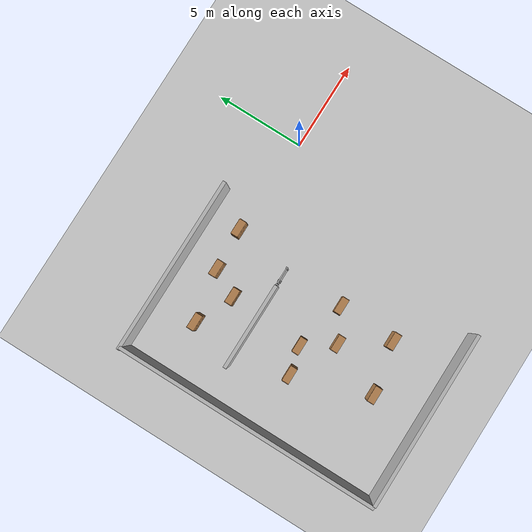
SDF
<sdf version="1.6">
 <world name="default">
  <model name="ground_plane">
   <static>1</static>
   <link name="link">
    <collision name="collision">
     <geometry><plane><normal>0 0 1</normal><size>100 100</size></plane></geometry>
     <surface><friction><ode><mu>100</mu><mu2>50</mu2></ode></friction></surface>
    </collision>
    <visual name="visual">
     <cast_shadows>0</cast_shadows>
     <geometry><plane><normal>0 0 1</normal><size>100 100</size></plane></geometry>
     <material>
      <script><uri>file://media/materials/scripts/gazebo.material</uri><name>Gazebo/Grey</name></script>
     </material>
    </visual>
    <velocity_decay><linear>0</linear><angular>0</angular></velocity_decay>
   </link>
  </model>
  <model name="wall_3_model">
   <pose>-13.8175 -5.49075 1 0 -0 0</pose>
   <static>1</static>
   <link name="wall_3_body">
    <inertial>
     <mass>1</mass>
     <inertia><ixx>1</ixx><ixy>0</ixy><ixz>0</ixz><iyy>1</iyy><iyz>0</iyz><izz>1</izz></inertia>
    </inertial>
    <collision name="collision"><geometry><box><size>0.2 15 2</size></box></geometry></collision>
    <visual name="visual"><geometry><box><size>0.2 15 2</size></box></geometry></visual>
    <velocity_decay><linear>0</linear><angular>0</angular></velocity_decay>
   </link>
  </model>
  <model name="wall_2_model_clone">
   <pose>-8.95614 1.99382 1 0 -0 0</pose>
   <static>1</static>
   <link name="wall_2_body">
    <inertial>
     <mass>1</mass>
     <inertia><ixx>1</ixx><ixy>0</ixy><ixz>0</ixz><iyy>1</iyy><iyz>0</iyz><izz>1</izz></inertia>
    </inertial>
    <collision name="collision"><geometry><box><size>10 0.2 2</size></box></geometry></collision>
    <visual name="visual"><geometry><box><size>10 0.2 2</size></box></geometry></visual>
    <velocity_decay><linear>0</linear><angular>0</angular></velocity_decay>
   </link>
  </model>
  <model name="wall_2_model_clone_0">
   <pose>-8.74815 -12.9526 1 0 -0 0</pose>
   <static>1</static>
   <link name="wall_2_body">
    <inertial>
     <mass>1</mass>
     <inertia><ixx>1</ixx><ixy>0</ixy><ixz>0</ixz><iyy>1</iyy><iyz>0</iyz><izz>1</izz></inertia>
    </inertial>
    <collision name="collision"><geometry><box><size>10 0.2 2</size></box></geometry></collision>
    <visual name="visual"><geometry><box><size>10 0.2 2</size></box></geometry></visual>
    <velocity_decay><linear>0</linear><angular>0</angular></velocity_decay>
   </link>
  </model>
  <model name="wall_6_model_clone">
   <pose>-9.46438 -3.01774 1 0 -0 0</pose>
   <static>1</static>
   <link name="wall_6_body">
    <inertial>
     <mass>1</mass>
     <inertia><ixx>1</ixx><ixy>0</ixy><ixz>0</ixz><iyy>1</iyy><iyz>0</iyz><izz>1</izz></inertia>
    </inertial>
    <collision name="collision"><geometry><box><size>4.86137 0.2 2</size></box></geometry></collision>
    <visual name="visual"><geometry><box><size>4.86137 0.2 2</size></box></geometry></visual>
    <velocity_decay><linear>0</linear><angular>0</angular></velocity_decay>
   </link>
  </model>
  <model name="bookshelf_0_clone">
   <static>0</static>
   <link name="link">
    <inertial>
     <mass>1</mass>
     <inertia><ixx>1</ixx><ixy>0</ixy><ixz>0</ixz><iyy>1</iyy><iyz>0</iyz><izz>1</izz></inertia>
    </inertial>
    <collision name="back">
     <pose>0 0.005 0.6 0 -0 0</pose>
     <geometry><box><size>0.9 0.01 1.2</size></box></geometry>
    </collision>
    <visual name="visual1">
     <pose>0 0.005 0.6 0 -0 0</pose>
     <geometry><box><size>0.9 0.01 1.2</size></box></geometry>
     <material>
      <script><uri>file://media/materials/scripts/gazebo.material</uri><name>Gazebo/Wood</name></script>
     </material>
    </visual>
    <collision name="left_side">
     <pose>0.45 -0.195 0.6 0 -0 0</pose>
     <geometry><box><size>0.02 0.4 1.2</size></box></geometry>
    </collision>
    <visual name="visual2">
     <pose>0.45 -0.195 0.6 0 -0 0</pose>
     <geometry><box><size>0.02 0.4 1.2</size></box></geometry>
     <material>
      <script><uri>file://media/materials/scripts/gazebo.material</uri><name>Gazebo/Wood</name></script>
     </material>
    </visual>
    <collision name="right_side">
     <pose>-0.45 -0.195 0.6 0 -0 0</pose>
     <geometry><box><size>0.02 0.4 1.2</size></box></geometry>
    </collision>
    <visual name="visual3">
     <pose>-0.45 -0.195 0.6 0 -0 0</pose>
     <geometry><box><size>0.02 0.4 1.2</size></box></geometry>
     <material>
      <script><uri>file://media/materials/scripts/gazebo.material</uri><name>Gazebo/Wood</name></script>
     </material>
    </visual>
    <collision name="bottom">
     <pose>0 -0.195 0.03 0 -0 0</pose>
     <geometry><box><size>0.88 0.4 0.06</size></box></geometry>
    </collision>
    <visual name="visual4">
     <pose>0 -0.195 0.03 0 -0 0</pose>
     <geometry><box><size>0.88 0.4 0.06</size></box></geometry>
     <material>
      <script><uri>file://media/materials/scripts/gazebo.material</uri><name>Gazebo/Wood</name></script>
     </material>
    </visual>
    <collision name="top">
     <pose>0 -0.195 1.19 0 -0 0</pose>
     <geometry><box><size>0.88 0.4 0.02</size></box></geometry>
    </collision>
    <visual name="visual5">
     <pose>0 -0.195 1.19 0 -0 0</pose>
     <geometry><box><size>0.88 0.4 0.02</size></box></geometry>
     <material>
      <script><uri>file://media/materials/scripts/gazebo.material</uri><name>Gazebo/Wood</name></script>
     </material>
    </visual>
    <collision name="low_shelf">
     <pose>0 -0.195 0.43 0 -0 0</pose>
     <geometry><box><size>0.88 0.4 0.02</size></box></geometry>
    </collision>
    <visual name="visual6">
     <pose>0 -0.195 0.43 0 -0 0</pose>
     <geometry><box><size>0.88 0.4 0.02</size></box></geometry>
     <material>
      <script><uri>file://media/materials/scripts/gazebo.material</uri><name>Gazebo/Wood</name></script>
     </material>
    </visual>
    <collision name="high_shelf">
     <pose>0 -0.195 0.8 0 -0 0</pose>
     <geometry><box><size>0.88 0.4 0.02</size></box></geometry>
    </collision>
    <visual name="visual7">
     <pose>0 -0.195 0.8 0 -0 0</pose>
     <geometry><box><size>0.88 0.4 0.02</size></box></geometry>
     <material>
      <script><uri>file://media/materials/scripts/gazebo.material</uri><name>Gazebo/Wood</name></script>
     </material>
    </visual>
    <velocity_decay><linear>0</linear><angular>0</angular></velocity_decay>
   </link>
   <pose>-8.68338 -1.16265 1e-06 -6.3e-05 -0 0</pose>
  </model>
  <model name="bookshelf_0_clone_0">
   <static>0</static>
   <link name="link">
    <inertial>
     <mass>1</mass>
     <inertia><ixx>1</ixx><ixy>0</ixy><ixz>0</ixz><iyy>1</iyy><iyz>0</iyz><izz>1</izz></inertia>
    </inertial>
    <collision name="back">
     <pose>0 0.005 0.6 0 -0 0</pose>
     <geometry><box><size>0.9 0.01 1.2</size></box></geometry>
    </collision>
    <visual name="visual1">
     <pose>0 0.005 0.6 0 -0 0</pose>
     <geometry><box><size>0.9 0.01 1.2</size></box></geometry>
     <material>
      <script><uri>file://media/materials/scripts/gazebo.material</uri><name>Gazebo/Wood</name></script>
     </material>
    </visual>
    <collision name="left_side">
     <pose>0.45 -0.195 0.6 0 -0 0</pose>
     <geometry><box><size>0.02 0.4 1.2</size></box></geometry>
    </collision>
    <visual name="visual2">
     <pose>0.45 -0.195 0.6 0 -0 0</pose>
     <geometry><box><size>0.02 0.4 1.2</size></box></geometry>
     <material>
      <script><uri>file://media/materials/scripts/gazebo.material</uri><name>Gazebo/Wood</name></script>
     </material>
    </visual>
    <collision name="right_side">
     <pose>-0.45 -0.195 0.6 0 -0 0</pose>
     <geometry><box><size>0.02 0.4 1.2</size></box></geometry>
    </collision>
    <visual name="visual3">
     <pose>-0.45 -0.195 0.6 0 -0 0</pose>
     <geometry><box><size>0.02 0.4 1.2</size></box></geometry>
     <material>
      <script><uri>file://media/materials/scripts/gazebo.material</uri><name>Gazebo/Wood</name></script>
     </material>
    </visual>
    <collision name="bottom">
     <pose>0 -0.195 0.03 0 -0 0</pose>
     <geometry><box><size>0.88 0.4 0.06</size></box></geometry>
    </collision>
    <visual name="visual4">
     <pose>0 -0.195 0.03 0 -0 0</pose>
     <geometry><box><size>0.88 0.4 0.06</size></box></geometry>
     <material>
      <script><uri>file://media/materials/scripts/gazebo.material</uri><name>Gazebo/Wood</name></script>
     </material>
    </visual>
    <collision name="top">
     <pose>0 -0.195 1.19 0 -0 0</pose>
     <geometry><box><size>0.88 0.4 0.02</size></box></geometry>
    </collision>
    <visual name="visual5">
     <pose>0 -0.195 1.19 0 -0 0</pose>
     <geometry><box><size>0.88 0.4 0.02</size></box></geometry>
     <material>
      <script><uri>file://media/materials/scripts/gazebo.material</uri><name>Gazebo/Wood</name></script>
     </material>
    </visual>
    <collision name="low_shelf">
     <pose>0 -0.195 0.43 0 -0 0</pose>
     <geometry><box><size>0.88 0.4 0.02</size></box></geometry>
    </collision>
    <visual name="visual6">
     <pose>0 -0.195 0.43 0 -0 0</pose>
     <geometry><box><size>0.88 0.4 0.02</size></box></geometry>
     <material>
      <script><uri>file://media/materials/scripts/gazebo.material</uri><name>Gazebo/Wood</name></script>
     </material>
    </visual>
    <collision name="high_shelf">
     <pose>0 -0.195 0.8 0 -0 0</pose>
     <geometry><box><size>0.88 0.4 0.02</size></box></geometry>
    </collision>
    <visual name="visual7">
     <pose>0 -0.195 0.8 0 -0 0</pose>
     <geometry><box><size>0.88 0.4 0.02</size></box></geometry>
     <material>
      <script><uri>file://media/materials/scripts/gazebo.material</uri><name>Gazebo/Wood</name></script>
     </material>
    </visual>
    <velocity_decay><linear>0</linear><angular>0</angular></velocity_decay>
   </link>
   <pose>-7.90183 0.3103 1e-06 -6.3e-05 -0 0</pose>
  </model>
  <model name="bookshelf_0_clone_1">
   <static>0</static>
   <link name="link">
    <inertial>
     <mass>1</mass>
     <inertia><ixx>1</ixx><ixy>0</ixy><ixz>0</ixz><iyy>1</iyy><iyz>0</iyz><izz>1</izz></inertia>
    </inertial>
    <collision name="back">
     <pose>0 0.005 0.6 0 -0 0</pose>
     <geometry><box><size>0.9 0.01 1.2</size></box></geometry>
    </collision>
    <visual name="visual1">
     <pose>0 0.005 0.6 0 -0 0</pose>
     <geometry><box><size>0.9 0.01 1.2</size></box></geometry>
     <material>
      <script><uri>file://media/materials/scripts/gazebo.material</uri><name>Gazebo/Wood</name></script>
     </material>
    </visual>
    <collision name="left_side">
     <pose>0.45 -0.195 0.6 0 -0 0</pose>
     <geometry><box><size>0.02 0.4 1.2</size></box></geometry>
    </collision>
    <visual name="visual2">
     <pose>0.45 -0.195 0.6 0 -0 0</pose>
     <geometry><box><size>0.02 0.4 1.2</size></box></geometry>
     <material>
      <script><uri>file://media/materials/scripts/gazebo.material</uri><name>Gazebo/Wood</name></script>
     </material>
    </visual>
    <collision name="right_side">
     <pose>-0.45 -0.195 0.6 0 -0 0</pose>
     <geometry><box><size>0.02 0.4 1.2</size></box></geometry>
    </collision>
    <visual name="visual3">
     <pose>-0.45 -0.195 0.6 0 -0 0</pose>
     <geometry><box><size>0.02 0.4 1.2</size></box></geometry>
     <material>
      <script><uri>file://media/materials/scripts/gazebo.material</uri><name>Gazebo/Wood</name></script>
     </material>
    </visual>
    <collision name="bottom">
     <pose>0 -0.195 0.03 0 -0 0</pose>
     <geometry><box><size>0.88 0.4 0.06</size></box></geometry>
    </collision>
    <visual name="visual4">
     <pose>0 -0.195 0.03 0 -0 0</pose>
     <geometry><box><size>0.88 0.4 0.06</size></box></geometry>
     <material>
      <script><uri>file://media/materials/scripts/gazebo.material</uri><name>Gazebo/Wood</name></script>
     </material>
    </visual>
    <collision name="top">
     <pose>0 -0.195 1.19 0 -0 0</pose>
     <geometry><box><size>0.88 0.4 0.02</size></box></geometry>
    </collision>
    <visual name="visual5">
     <pose>0 -0.195 1.19 0 -0 0</pose>
     <geometry><box><size>0.88 0.4 0.02</size></box></geometry>
     <material>
      <script><uri>file://media/materials/scripts/gazebo.material</uri><name>Gazebo/Wood</name></script>
     </material>
    </visual>
    <collision name="low_shelf">
     <pose>0 -0.195 0.43 0 -0 0</pose>
     <geometry><box><size>0.88 0.4 0.02</size></box></geometry>
    </collision>
    <visual name="visual6">
     <pose>0 -0.195 0.43 0 -0 0</pose>
     <geometry><box><size>0.88 0.4 0.02</size></box></geometry>
     <material>
      <script><uri>file://media/materials/scripts/gazebo.material</uri><name>Gazebo/Wood</name></script>
     </material>
    </visual>
    <collision name="high_shelf">
     <pose>0 -0.195 0.8 0 -0 0</pose>
     <geometry><box><size>0.88 0.4 0.02</size></box></geometry>
    </collision>
    <visual name="visual7">
     <pose>0 -0.195 0.8 0 -0 0</pose>
     <geometry><box><size>0.88 0.4 0.02</size></box></geometry>
     <material>
      <script><uri>file://media/materials/scripts/gazebo.material</uri><name>Gazebo/Wood</name></script>
     </material>
    </visual>
    <velocity_decay><linear>0</linear><angular>0</angular></velocity_decay>
   </link>
   <pose>-7.86995 -7.06577 1e-06 -6.3e-05 -0 0</pose>
  </model>
  <model name="bookshelf_0_clone_2">
   <static>0</static>
   <link name="link">
    <inertial>
     <mass>1</mass>
     <inertia><ixx>1</ixx><ixy>0</ixy><ixz>0</ixz><iyy>1</iyy><iyz>0</iyz><izz>1</izz></inertia>
    </inertial>
    <collision name="back">
     <pose>0 0.005 0.6 0 -0 0</pose>
     <geometry><box><size>0.9 0.01 1.2</size></box></geometry>
    </collision>
    <visual name="visual1">
     <pose>0 0.005 0.6 0 -0 0</pose>
     <geometry><box><size>0.9 0.01 1.2</size></box></geometry>
     <material>
      <script><uri>file://media/materials/scripts/gazebo.material</uri><name>Gazebo/Wood</name></script>
     </material>
    </visual>
    <collision name="left_side">
     <pose>0.45 -0.195 0.6 0 -0 0</pose>
     <geometry><box><size>0.02 0.4 1.2</size></box></geometry>
    </collision>
    <visual name="visual2">
     <pose>0.45 -0.195 0.6 0 -0 0</pose>
     <geometry><box><size>0.02 0.4 1.2</size></box></geometry>
     <material>
      <script><uri>file://media/materials/scripts/gazebo.material</uri><name>Gazebo/Wood</name></script>
     </material>
    </visual>
    <collision name="right_side">
     <pose>-0.45 -0.195 0.6 0 -0 0</pose>
     <geometry><box><size>0.02 0.4 1.2</size></box></geometry>
    </collision>
    <visual name="visual3">
     <pose>-0.45 -0.195 0.6 0 -0 0</pose>
     <geometry><box><size>0.02 0.4 1.2</size></box></geometry>
     <material>
      <script><uri>file://media/materials/scripts/gazebo.material</uri><name>Gazebo/Wood</name></script>
     </material>
    </visual>
    <collision name="bottom">
     <pose>0 -0.195 0.03 0 -0 0</pose>
     <geometry><box><size>0.88 0.4 0.06</size></box></geometry>
    </collision>
    <visual name="visual4">
     <pose>0 -0.195 0.03 0 -0 0</pose>
     <geometry><box><size>0.88 0.4 0.06</size></box></geometry>
     <material>
      <script><uri>file://media/materials/scripts/gazebo.material</uri><name>Gazebo/Wood</name></script>
     </material>
    </visual>
    <collision name="top">
     <pose>0 -0.195 1.19 0 -0 0</pose>
     <geometry><box><size>0.88 0.4 0.02</size></box></geometry>
    </collision>
    <visual name="visual5">
     <pose>0 -0.195 1.19 0 -0 0</pose>
     <geometry><box><size>0.88 0.4 0.02</size></box></geometry>
     <material>
      <script><uri>file://media/materials/scripts/gazebo.material</uri><name>Gazebo/Wood</name></script>
     </material>
    </visual>
    <collision name="low_shelf">
     <pose>0 -0.195 0.43 0 -0 0</pose>
     <geometry><box><size>0.88 0.4 0.02</size></box></geometry>
    </collision>
    <visual name="visual6">
     <pose>0 -0.195 0.43 0 -0 0</pose>
     <geometry><box><size>0.88 0.4 0.02</size></box></geometry>
     <material>
      <script><uri>file://media/materials/scripts/gazebo.material</uri><name>Gazebo/Wood</name></script>
     </material>
    </visual>
    <collision name="high_shelf">
     <pose>0 -0.195 0.8 0 -0 0</pose>
     <geometry><box><size>0.88 0.4 0.02</size></box></geometry>
    </collision>
    <visual name="visual7">
     <pose>0 -0.195 0.8 0 -0 0</pose>
     <geometry><box><size>0.88 0.4 0.02</size></box></geometry>
     <material>
      <script><uri>file://media/materials/scripts/gazebo.material</uri><name>Gazebo/Wood</name></script>
     </material>
    </visual>
    <velocity_decay><linear>0</linear><angular>0</angular></velocity_decay>
   </link>
   <pose>-6.24179 -9.41728 1e-06 -6.3e-05 -0 0</pose>
  </model>
  <model name="bookshelf_0_clone_3">
   <static>0</static>
   <link name="link">
    <inertial>
     <mass>1</mass>
     <inertia><ixx>1</ixx><ixy>0</ixy><ixz>0</ixz><iyy>1</iyy><iyz>0</iyz><izz>1</izz></inertia>
    </inertial>
    <collision name="back">
     <pose>0 0.005 0.6 0 -0 0</pose>
     <geometry><box><size>0.9 0.01 1.2</size></box></geometry>
    </collision>
    <visual name="visual1">
     <pose>0 0.005 0.6 0 -0 0</pose>
     <geometry><box><size>0.9 0.01 1.2</size></box></geometry>
     <material>
      <script><uri>file://media/materials/scripts/gazebo.material</uri><name>Gazebo/Wood</name></script>
     </material>
    </visual>
    <collision name="left_side">
     <pose>0.45 -0.195 0.6 0 -0 0</pose>
     <geometry><box><size>0.02 0.4 1.2</size></box></geometry>
    </collision>
    <visual name="visual2">
     <pose>0.45 -0.195 0.6 0 -0 0</pose>
     <geometry><box><size>0.02 0.4 1.2</size></box></geometry>
     <material>
      <script><uri>file://media/materials/scripts/gazebo.material</uri><name>Gazebo/Wood</name></script>
     </material>
    </visual>
    <collision name="right_side">
     <pose>-0.45 -0.195 0.6 0 -0 0</pose>
     <geometry><box><size>0.02 0.4 1.2</size></box></geometry>
    </collision>
    <visual name="visual3">
     <pose>-0.45 -0.195 0.6 0 -0 0</pose>
     <geometry><box><size>0.02 0.4 1.2</size></box></geometry>
     <material>
      <script><uri>file://media/materials/scripts/gazebo.material</uri><name>Gazebo/Wood</name></script>
     </material>
    </visual>
    <collision name="bottom">
     <pose>0 -0.195 0.03 0 -0 0</pose>
     <geometry><box><size>0.88 0.4 0.06</size></box></geometry>
    </collision>
    <visual name="visual4">
     <pose>0 -0.195 0.03 0 -0 0</pose>
     <geometry><box><size>0.88 0.4 0.06</size></box></geometry>
     <material>
      <script><uri>file://media/materials/scripts/gazebo.material</uri><name>Gazebo/Wood</name></script>
     </material>
    </visual>
    <collision name="top">
     <pose>0 -0.195 1.19 0 -0 0</pose>
     <geometry><box><size>0.88 0.4 0.02</size></box></geometry>
    </collision>
    <visual name="visual5">
     <pose>0 -0.195 1.19 0 -0 0</pose>
     <geometry><box><size>0.88 0.4 0.02</size></box></geometry>
     <material>
      <script><uri>file://media/materials/scripts/gazebo.material</uri><name>Gazebo/Wood</name></script>
     </material>
    </visual>
    <collision name="low_shelf">
     <pose>0 -0.195 0.43 0 -0 0</pose>
     <geometry><box><size>0.88 0.4 0.02</size></box></geometry>
    </collision>
    <visual name="visual6">
     <pose>0 -0.195 0.43 0 -0 0</pose>
     <geometry><box><size>0.88 0.4 0.02</size></box></geometry>
     <material>
      <script><uri>file://media/materials/scripts/gazebo.material</uri><name>Gazebo/Wood</name></script>
     </material>
    </visual>
    <collision name="high_shelf">
     <pose>0 -0.195 0.8 0 -0 0</pose>
     <geometry><box><size>0.88 0.4 0.02</size></box></geometry>
    </collision>
    <visual name="visual7">
     <pose>0 -0.195 0.8 0 -0 0</pose>
     <geometry><box><size>0.88 0.4 0.02</size></box></geometry>
     <material>
      <script><uri>file://media/materials/scripts/gazebo.material</uri><name>Gazebo/Wood</name></script>
     </material>
    </visual>
    <velocity_decay><linear>0</linear><angular>0</angular></velocity_decay>
   </link>
   <pose>-9.08829 -10.0179 1e-06 -6.3e-05 -0 0</pose>
  </model>
  <model name="bookshelf_0_clone_4">
   <static>0</static>
   <link name="link">
    <inertial>
     <mass>1</mass>
     <inertia><ixx>1</ixx><ixy>0</ixy><ixz>0</ixz><iyy>1</iyy><iyz>0</iyz><izz>1</izz></inertia>
    </inertial>
    <collision name="back">
     <pose>0 0.005 0.6 0 -0 0</pose>
     <geometry><box><size>0.9 0.01 1.2</size></box></geometry>
    </collision>
    <visual name="visual1">
     <pose>0 0.005 0.6 0 -0 0</pose>
     <geometry><box><size>0.9 0.01 1.2</size></box></geometry>
     <material>
      <script><uri>file://media/materials/scripts/gazebo.material</uri><name>Gazebo/Wood</name></script>
     </material>
    </visual>
    <collision name="left_side">
     <pose>0.45 -0.195 0.6 0 -0 0</pose>
     <geometry><box><size>0.02 0.4 1.2</size></box></geometry>
    </collision>
    <visual name="visual2">
     <pose>0.45 -0.195 0.6 0 -0 0</pose>
     <geometry><box><size>0.02 0.4 1.2</size></box></geometry>
     <material>
      <script><uri>file://media/materials/scripts/gazebo.material</uri><name>Gazebo/Wood</name></script>
     </material>
    </visual>
    <collision name="right_side">
     <pose>-0.45 -0.195 0.6 0 -0 0</pose>
     <geometry><box><size>0.02 0.4 1.2</size></box></geometry>
    </collision>
    <visual name="visual3">
     <pose>-0.45 -0.195 0.6 0 -0 0</pose>
     <geometry><box><size>0.02 0.4 1.2</size></box></geometry>
     <material>
      <script><uri>file://media/materials/scripts/gazebo.material</uri><name>Gazebo/Wood</name></script>
     </material>
    </visual>
    <collision name="bottom">
     <pose>0 -0.195 0.03 0 -0 0</pose>
     <geometry><box><size>0.88 0.4 0.06</size></box></geometry>
    </collision>
    <visual name="visual4">
     <pose>0 -0.195 0.03 0 -0 0</pose>
     <geometry><box><size>0.88 0.4 0.06</size></box></geometry>
     <material>
      <script><uri>file://media/materials/scripts/gazebo.material</uri><name>Gazebo/Wood</name></script>
     </material>
    </visual>
    <collision name="top">
     <pose>0 -0.195 1.19 0 -0 0</pose>
     <geometry><box><size>0.88 0.4 0.02</size></box></geometry>
    </collision>
    <visual name="visual5">
     <pose>0 -0.195 1.19 0 -0 0</pose>
     <geometry><box><size>0.88 0.4 0.02</size></box></geometry>
     <material>
      <script><uri>file://media/materials/scripts/gazebo.material</uri><name>Gazebo/Wood</name></script>
     </material>
    </visual>
    <collision name="low_shelf">
     <pose>0 -0.195 0.43 0 -0 0</pose>
     <geometry><box><size>0.88 0.4 0.02</size></box></geometry>
    </collision>
    <visual name="visual6">
     <pose>0 -0.195 0.43 0 -0 0</pose>
     <geometry><box><size>0.88 0.4 0.02</size></box></geometry>
     <material>
      <script><uri>file://media/materials/scripts/gazebo.material</uri><name>Gazebo/Wood</name></script>
     </material>
    </visual>
    <collision name="high_shelf">
     <pose>0 -0.195 0.8 0 -0 0</pose>
     <geometry><box><size>0.88 0.4 0.02</size></box></geometry>
    </collision>
    <visual name="visual7">
     <pose>0 -0.195 0.8 0 -0 0</pose>
     <geometry><box><size>0.88 0.4 0.02</size></box></geometry>
     <material>
      <script><uri>file://media/materials/scripts/gazebo.material</uri><name>Gazebo/Wood</name></script>
     </material>
    </visual>
    <velocity_decay><linear>0</linear><angular>0</angular></velocity_decay>
   </link>
   <pose>-9.00217 -5.4424 1e-06 -6.3e-05 -0 0</pose>
  </model>
  <model name="bookshelf_0_clone_5">
   <static>0</static>
   <link name="link">
    <inertial>
     <mass>1</mass>
     <inertia><ixx>1</ixx><ixy>0</ixy><ixz>0</ixz><iyy>1</iyy><iyz>0</iyz><izz>1</izz></inertia>
    </inertial>
    <collision name="back">
     <pose>0 0.005 0.6 0 -0 0</pose>
     <geometry><box><size>0.9 0.01 1.2</size></box></geometry>
    </collision>
    <visual name="visual1">
     <pose>0 0.005 0.6 0 -0 0</pose>
     <geometry><box><size>0.9 0.01 1.2</size></box></geometry>
     <material>
      <script><uri>file://media/materials/scripts/gazebo.material</uri><name>Gazebo/Wood</name></script>
     </material>
    </visual>
    <collision name="left_side">
     <pose>0.45 -0.195 0.6 0 -0 0</pose>
     <geometry><box><size>0.02 0.4 1.2</size></box></geometry>
    </collision>
    <visual name="visual2">
     <pose>0.45 -0.195 0.6 0 -0 0</pose>
     <geometry><box><size>0.02 0.4 1.2</size></box></geometry>
     <material>
      <script><uri>file://media/materials/scripts/gazebo.material</uri><name>Gazebo/Wood</name></script>
     </material>
    </visual>
    <collision name="right_side">
     <pose>-0.45 -0.195 0.6 0 -0 0</pose>
     <geometry><box><size>0.02 0.4 1.2</size></box></geometry>
    </collision>
    <visual name="visual3">
     <pose>-0.45 -0.195 0.6 0 -0 0</pose>
     <geometry><box><size>0.02 0.4 1.2</size></box></geometry>
     <material>
      <script><uri>file://media/materials/scripts/gazebo.material</uri><name>Gazebo/Wood</name></script>
     </material>
    </visual>
    <collision name="bottom">
     <pose>0 -0.195 0.03 0 -0 0</pose>
     <geometry><box><size>0.88 0.4 0.06</size></box></geometry>
    </collision>
    <visual name="visual4">
     <pose>0 -0.195 0.03 0 -0 0</pose>
     <geometry><box><size>0.88 0.4 0.06</size></box></geometry>
     <material>
      <script><uri>file://media/materials/scripts/gazebo.material</uri><name>Gazebo/Wood</name></script>
     </material>
    </visual>
    <collision name="top">
     <pose>0 -0.195 1.19 0 -0 0</pose>
     <geometry><box><size>0.88 0.4 0.02</size></box></geometry>
    </collision>
    <visual name="visual5">
     <pose>0 -0.195 1.19 0 -0 0</pose>
     <geometry><box><size>0.88 0.4 0.02</size></box></geometry>
     <material>
      <script><uri>file://media/materials/scripts/gazebo.material</uri><name>Gazebo/Wood</name></script>
     </material>
    </visual>
    <collision name="low_shelf">
     <pose>0 -0.195 0.43 0 -0 0</pose>
     <geometry><box><size>0.88 0.4 0.02</size></box></geometry>
    </collision>
    <visual name="visual6">
     <pose>0 -0.195 0.43 0 -0 0</pose>
     <geometry><box><size>0.88 0.4 0.02</size></box></geometry>
     <material>
      <script><uri>file://media/materials/scripts/gazebo.material</uri><name>Gazebo/Wood</name></script>
     </material>
    </visual>
    <collision name="high_shelf">
     <pose>0 -0.195 0.8 0 -0 0</pose>
     <geometry><box><size>0.88 0.4 0.02</size></box></geometry>
    </collision>
    <visual name="visual7">
     <pose>0 -0.195 0.8 0 -0 0</pose>
     <geometry><box><size>0.88 0.4 0.02</size></box></geometry>
     <material>
      <script><uri>file://media/materials/scripts/gazebo.material</uri><name>Gazebo/Wood</name></script>
     </material>
    </visual>
    <velocity_decay><linear>0</linear><angular>0</angular></velocity_decay>
   </link>
   <pose>-6.12679 -6.18232 1e-06 -6.3e-05 -0 0</pose>
  </model>
  <model name="bookshelf_0_clone_6">
   <static>0</static>
   <link name="link">
    <inertial>
     <mass>1</mass>
     <inertia><ixx>1</ixx><ixy>0</ixy><ixz>0</ixz><iyy>1</iyy><iyz>0</iyz><izz>1</izz></inertia>
    </inertial>
    <collision name="back">
     <pose>0 0.005 0.6 0 -0 0</pose>
     <geometry><box><size>0.9 0.01 1.2</size></box></geometry>
    </collision>
    <visual name="visual1">
     <pose>0 0.005 0.6 0 -0 0</pose>
     <geometry><box><size>0.9 0.01 1.2</size></box></geometry>
     <material>
      <script><uri>file://media/materials/scripts/gazebo.material</uri><name>Gazebo/Wood</name></script>
     </material>
    </visual>
    <collision name="left_side">
     <pose>0.45 -0.195 0.6 0 -0 0</pose>
     <geometry><box><size>0.02 0.4 1.2</size></box></geometry>
    </collision>
    <visual name="visual2">
     <pose>0.45 -0.195 0.6 0 -0 0</pose>
     <geometry><box><size>0.02 0.4 1.2</size></box></geometry>
     <material>
      <script><uri>file://media/materials/scripts/gazebo.material</uri><name>Gazebo/Wood</name></script>
     </material>
    </visual>
    <collision name="right_side">
     <pose>-0.45 -0.195 0.6 0 -0 0</pose>
     <geometry><box><size>0.02 0.4 1.2</size></box></geometry>
    </collision>
    <visual name="visual3">
     <pose>-0.45 -0.195 0.6 0 -0 0</pose>
     <geometry><box><size>0.02 0.4 1.2</size></box></geometry>
     <material>
      <script><uri>file://media/materials/scripts/gazebo.material</uri><name>Gazebo/Wood</name></script>
     </material>
    </visual>
    <collision name="bottom">
     <pose>0 -0.195 0.03 0 -0 0</pose>
     <geometry><box><size>0.88 0.4 0.06</size></box></geometry>
    </collision>
    <visual name="visual4">
     <pose>0 -0.195 0.03 0 -0 0</pose>
     <geometry><box><size>0.88 0.4 0.06</size></box></geometry>
     <material>
      <script><uri>file://media/materials/scripts/gazebo.material</uri><name>Gazebo/Wood</name></script>
     </material>
    </visual>
    <collision name="top">
     <pose>0 -0.195 1.19 0 -0 0</pose>
     <geometry><box><size>0.88 0.4 0.02</size></box></geometry>
    </collision>
    <visual name="visual5">
     <pose>0 -0.195 1.19 0 -0 0</pose>
     <geometry><box><size>0.88 0.4 0.02</size></box></geometry>
     <material>
      <script><uri>file://media/materials/scripts/gazebo.material</uri><name>Gazebo/Wood</name></script>
     </material>
    </visual>
    <collision name="low_shelf">
     <pose>0 -0.195 0.43 0 -0 0</pose>
     <geometry><box><size>0.88 0.4 0.02</size></box></geometry>
    </collision>
    <visual name="visual6">
     <pose>0 -0.195 0.43 0 -0 0</pose>
     <geometry><box><size>0.88 0.4 0.02</size></box></geometry>
     <material>
      <script><uri>file://media/materials/scripts/gazebo.material</uri><name>Gazebo/Wood</name></script>
     </material>
    </visual>
    <collision name="high_shelf">
     <pose>0 -0.195 0.8 0 -0 0</pose>
     <geometry><box><size>0.88 0.4 0.02</size></box></geometry>
    </collision>
    <visual name="visual7">
     <pose>0 -0.195 0.8 0 -0 0</pose>
     <geometry><box><size>0.88 0.4 0.02</size></box></geometry>
     <material>
      <script><uri>file://media/materials/scripts/gazebo.material</uri><name>Gazebo/Wood</name></script>
     </material>
    </visual>
    <velocity_decay><linear>0</linear><angular>0</angular></velocity_decay>
   </link>
   <pose>-5.53315 0.444977 1e-06 -6.3e-05 -0 0</pose>
  </model>
  <model name="bookshelf_0_clone_7">
   <static>0</static>
   <link name="link">
    <inertial>
     <mass>1</mass>
     <inertia><ixx>1</ixx><ixy>0</ixy><ixz>0</ixz><iyy>1</iyy><iyz>0</iyz><izz>1</izz></inertia>
    </inertial>
    <collision name="back">
     <pose>0 0.005 0.6 0 -0 0</pose>
     <geometry><box><size>0.9 0.01 1.2</size></box></geometry>
    </collision>
    <visual name="visual1">
     <pose>0 0.005 0.6 0 -0 0</pose>
     <geometry><box><size>0.9 0.01 1.2</size></box></geometry>
     <material>
      <script><uri>file://media/materials/scripts/gazebo.material</uri><name>Gazebo/Wood</name></script>
     </material>
    </visual>
    <collision name="left_side">
     <pose>0.45 -0.195 0.6 0 -0 0</pose>
     <geometry><box><size>0.02 0.4 1.2</size></box></geometry>
    </collision>
    <visual name="visual2">
     <pose>0.45 -0.195 0.6 0 -0 0</pose>
     <geometry><box><size>0.02 0.4 1.2</size></box></geometry>
     <material>
      <script><uri>file://media/materials/scripts/gazebo.material</uri><name>Gazebo/Wood</name></script>
     </material>
    </visual>
    <collision name="right_side">
     <pose>-0.45 -0.195 0.6 0 -0 0</pose>
     <geometry><box><size>0.02 0.4 1.2</size></box></geometry>
    </collision>
    <visual name="visual3">
     <pose>-0.45 -0.195 0.6 0 -0 0</pose>
     <geometry><box><size>0.02 0.4 1.2</size></box></geometry>
     <material>
      <script><uri>file://media/materials/scripts/gazebo.material</uri><name>Gazebo/Wood</name></script>
     </material>
    </visual>
    <collision name="bottom">
     <pose>0 -0.195 0.03 0 -0 0</pose>
     <geometry><box><size>0.88 0.4 0.06</size></box></geometry>
    </collision>
    <visual name="visual4">
     <pose>0 -0.195 0.03 0 -0 0</pose>
     <geometry><box><size>0.88 0.4 0.06</size></box></geometry>
     <material>
      <script><uri>file://media/materials/scripts/gazebo.material</uri><name>Gazebo/Wood</name></script>
     </material>
    </visual>
    <collision name="top">
     <pose>0 -0.195 1.19 0 -0 0</pose>
     <geometry><box><size>0.88 0.4 0.02</size></box></geometry>
    </collision>
    <visual name="visual5">
     <pose>0 -0.195 1.19 0 -0 0</pose>
     <geometry><box><size>0.88 0.4 0.02</size></box></geometry>
     <material>
      <script><uri>file://media/materials/scripts/gazebo.material</uri><name>Gazebo/Wood</name></script>
     </material>
    </visual>
    <collision name="low_shelf">
     <pose>0 -0.195 0.43 0 -0 0</pose>
     <geometry><box><size>0.88 0.4 0.02</size></box></geometry>
    </collision>
    <visual name="visual6">
     <pose>0 -0.195 0.43 0 -0 0</pose>
     <geometry><box><size>0.88 0.4 0.02</size></box></geometry>
     <material>
      <script><uri>file://media/materials/scripts/gazebo.material</uri><name>Gazebo/Wood</name></script>
     </material>
    </visual>
    <collision name="high_shelf">
     <pose>0 -0.195 0.8 0 -0 0</pose>
     <geometry><box><size>0.88 0.4 0.02</size></box></geometry>
    </collision>
    <visual name="visual7">
     <pose>0 -0.195 0.8 0 -0 0</pose>
     <geometry><box><size>0.88 0.4 0.02</size></box></geometry>
     <material>
      <script><uri>file://media/materials/scripts/gazebo.material</uri><name>Gazebo/Wood</name></script>
     </material>
    </visual>
    <velocity_decay><linear>0</linear><angular>0</angular></velocity_decay>
   </link>
   <pose>-10.8078 -0.220706 1e-06 -6.3e-05 -0 0</pose>
  </model>
  <model name="bookshelf_0_clone_14">
   <static>0</static>
   <link name="link">
    <inertial>
     <mass>1</mass>
     <inertia><ixx>1</ixx><ixy>0</ixy><ixz>0</ixz><iyy>1</iyy><iyz>0</iyz><izz>1</izz></inertia>
    </inertial>
    <collision name="back">
     <pose>0 0.005 0.6 0 -0 0</pose>
     <geometry><box><size>0.9 0.01 1.2</size></box></geometry>
    </collision>
    <visual name="visual1">
     <pose>0 0.005 0.6 0 -0 0</pose>
     <geometry><box><size>0.9 0.01 1.2</size></box></geometry>
     <material>
      <script><uri>file://media/materials/scripts/gazebo.material</uri><name>Gazebo/Wood</name></script>
     </material>
    </visual>
    <collision name="left_side">
     <pose>0.45 -0.195 0.6 0 -0 0</pose>
     <geometry><box><size>0.02 0.4 1.2</size></box></geometry>
    </collision>
    <visual name="visual2">
     <pose>0.45 -0.195 0.6 0 -0 0</pose>
     <geometry><box><size>0.02 0.4 1.2</size></box></geometry>
     <material>
      <script><uri>file://media/materials/scripts/gazebo.material</uri><name>Gazebo/Wood</name></script>
     </material>
    </visual>
    <collision name="right_side">
     <pose>-0.45 -0.195 0.6 0 -0 0</pose>
     <geometry><box><size>0.02 0.4 1.2</size></box></geometry>
    </collision>
    <visual name="visual3">
     <pose>-0.45 -0.195 0.6 0 -0 0</pose>
     <geometry><box><size>0.02 0.4 1.2</size></box></geometry>
     <material>
      <script><uri>file://media/materials/scripts/gazebo.material</uri><name>Gazebo/Wood</name></script>
     </material>
    </visual>
    <collision name="bottom">
     <pose>0 -0.195 0.03 0 -0 0</pose>
     <geometry><box><size>0.88 0.4 0.06</size></box></geometry>
    </collision>
    <visual name="visual4">
     <pose>0 -0.195 0.03 0 -0 0</pose>
     <geometry><box><size>0.88 0.4 0.06</size></box></geometry>
     <material>
      <script><uri>file://media/materials/scripts/gazebo.material</uri><name>Gazebo/Wood</name></script>
     </material>
    </visual>
    <collision name="top">
     <pose>0 -0.195 1.19 0 -0 0</pose>
     <geometry><box><size>0.88 0.4 0.02</size></box></geometry>
    </collision>
    <visual name="visual5">
     <pose>0 -0.195 1.19 0 -0 0</pose>
     <geometry><box><size>0.88 0.4 0.02</size></box></geometry>
     <material>
      <script><uri>file://media/materials/scripts/gazebo.material</uri><name>Gazebo/Wood</name></script>
     </material>
    </visual>
    <collision name="low_shelf">
     <pose>0 -0.195 0.43 0 -0 0</pose>
     <geometry><box><size>0.88 0.4 0.02</size></box></geometry>
    </collision>
    <visual name="visual6">
     <pose>0 -0.195 0.43 0 -0 0</pose>
     <geometry><box><size>0.88 0.4 0.02</size></box></geometry>
     <material>
      <script><uri>file://media/materials/scripts/gazebo.material</uri><name>Gazebo/Wood</name></script>
     </material>
    </visual>
    <collision name="high_shelf">
     <pose>0 -0.195 0.8 0 -0 0</pose>
     <geometry><box><size>0.88 0.4 0.02</size></box></geometry>
    </collision>
    <visual name="visual7">
     <pose>0 -0.195 0.8 0 -0 0</pose>
     <geometry><box><size>0.88 0.4 0.02</size></box></geometry>
     <material>
      <script><uri>file://media/materials/scripts/gazebo.material</uri><name>Gazebo/Wood</name></script>
     </material>
    </visual>
    <velocity_decay><linear>0</linear><angular>0</angular></velocity_decay>
   </link>
   <pose>-10.5195 -5.79484 0 -3.2e-05 0 0</pose>
  </model>
  <model name="hinged_door_left">
   <static>0</static>
   <link name="frame">
    <pose>0 0 1 0 -0 0</pose>
    <visual name="frame_visual"><geometry><box><size>-0.08 0.1 2</size></box></geometry></visual>
    <collision name="frame_collision"><geometry><box><size>-0.08 0.1 2</size></box></geometry></collision>
    <inertial>
     <mass>20</mass>
     <inertia><ixx>1</ixx><iyy>1</iyy><izz>1</izz><ixy>0</ixy><ixz>0</ixz><iyz>0</iyz></inertia>
    </inertial>
   </link>
   <joint name="frame_to_world" type="fixed"><parent>world</parent><child>frame</child></joint>
   <link name="door_panel">
    <pose>0 0 1 0 -0 0</pose>
    <visual name="door_visual">
     <pose>-0.45 0 0 0 -0 0</pose>
     <geometry><box><size>-0.9 0.06 2</size></box></geometry>
    </visual>
    <collision name="door_collision">
     <pose>-0.45 0 0 0 -0 0</pose>
     <geometry><box><size>-0.9 0.06 2</size></box></geometry>
     <surface><friction><ode><mu>0.5</mu><mu2>0.5</mu2></ode></friction></surface>
    </collision>
    <inertial>
     <pose>-0.45 0 0 0 -0 0</pose>
     <mass>20</mass>
     <inertia><ixx>2</ixx><iyy>2</iyy><izz>2</izz><ixy>0</ixy><ixz>0</ixz><iyz>0</iyz></inertia>
    </inertial>
   </link>
   <joint name="hinge" type="revolute">
    <parent>frame</parent>
    <child>door_panel</child>
    <axis>
     <xyz>0 0 1</xyz>
     <limit><lower>-1.57</lower><upper>0</upper><effort>200</effort><velocity>2</velocity></limit>
     <dynamics>
      <damping>0.05</damping>
      <friction>0</friction>
      <spring_reference>0</spring_reference>
      <spring_stiffness>0</spring_stiffness>
     </dynamics>
     <use_parent_model_frame>0</use_parent_model_frame>
    </axis>
   </joint>
   <link name="handle_front">
    <pose>-0.75 0.090 1.050 0 0 0</pose>
    <collision name="handle_front_bar_collision">
     <pose>0 0 0 0 1.5707963 0</pose>
     <geometry><cylinder><radius>0.012</radius><length>0.16</length></cylinder></geometry>
    </collision>
    <collision name="handle_front_stem_collision">
     <pose>-0.065 -0.030 0 1.5707963 0 0</pose>
     <geometry><cylinder><radius>0.010</radius><length>0.06</length></cylinder></geometry>
    </collision>
    <visual name="handle_front_bar_visual">
     <pose>0 0 0 0 1.5707963 0</pose>
     <geometry><cylinder><radius>0.012</radius><length>0.16</length></cylinder></geometry>
    </visual>
    <visual name="handle_front_stem_visual">
     <pose>-0.065 -0.030 0 1.5707963 0 0</pose>
     <geometry><cylinder><radius>0.010</radius><length>0.06</length></cylinder></geometry>
    </visual>
    <inertial>
     <mass>0.5</mass>
     <inertia><ixx>0.001</ixx><iyy>0.001</iyy><izz>0.001</izz><ixy>0</ixy><ixz>0</ixz><iyz>0</iyz></inertia>
    </inertial>
   </link>
   <joint name="handle_front_fixed" type="fixed"><parent>door_panel</parent><child>handle_front</child></joint>
   <link name="handle_back">
    <pose>-0.75 -0.090 1.050 0 0 0</pose>
    <collision name="handle_back_bar_collision">
     <pose>0 0 0 0 1.5707963 0</pose>
     <geometry><cylinder><radius>0.012</radius><length>0.16</length></cylinder></geometry>
    </collision>
    <collision name="handle_back_stem_collision">
     <pose>-0.065 0.030 0 1.5707963 0 0</pose>
     <geometry><cylinder><radius>0.010</radius><length>0.06</length></cylinder></geometry>
    </collision>
    <visual name="handle_back_bar_visual">
     <pose>0 0 0 0 1.5707963 0</pose>
     <geometry><cylinder><radius>0.012</radius><length>0.16</length></cylinder></geometry>
    </visual>
    <visual name="handle_back_stem_visual">
     <pose>-0.065 0.030 0 1.5707963 0 0</pose>
     <geometry><cylinder><radius>0.010</radius><length>0.06</length></cylinder></geometry>
    </visual>
    <inertial>
     <mass>0.5</mass>
     <inertia><ixx>0.001</ixx><iyy>0.001</iyy><izz>0.001</izz><ixy>0</ixy><ixz>0</ixz><iyz>0</iyz></inertia>
    </inertial>
   </link>
   <joint name="handle_back_fixed" type="fixed"><parent>door_panel</parent><child>handle_back</child></joint>
   <static>1</static>
   <link name="tag_front_model::tag_link">
    <visual name="tag_visual">
     <geometry><box><size>0.18 0.002 0.18</size></box></geometry>
     <material>
      <script>
       <uri>model://apriltag_plate_2/materials/scripts</uri>
       <uri>model://apriltag_plate_2/materials/textures</uri>
       <name>Apriltag/Tag2</name>
      </script>
     </material>
     <cast_shadows>0</cast_shadows>
    </visual>
    <collision name="tag_collision"><geometry><box><size>0.18 0.002 0.18</size></box></geometry></collision>
    <pose>-0.75 0.031 1.2 3.14159 -0 3.14159</pose>
    <inertial>
     <inertia><ixx>1</ixx><ixy>0</ixy><ixz>0</ixz><iyy>1</iyy><iyz>0</iyz><izz>1</izz></inertia>
     <mass>1</mass>
    </inertial>
   </link>
   <joint name="tag_front_fixed" type="fixed">
    <parent>door_panel</parent>
    <child>tag_front_model::tag_link</child>
   </joint>
   <static>1</static>
   <link name="tag_back_model::tag_link">
    <visual name="tag_visual">
     <geometry><box><size>0.18 0.002 0.18</size></box></geometry>
     <material>
      <script>
       <uri>model://apriltag_plate_3/materials/scripts</uri>
       <uri>model://apriltag_plate_3/materials/textures</uri>
       <name>Apriltag/Tag3</name>
      </script>
     </material>
     <cast_shadows>0</cast_shadows>
    </visual>
    <collision name="tag_collision"><geometry><box><size>0.18 0.002 0.18</size></box></geometry></collision>
    <pose>-0.75 -0.031 1.2 0 -0 0</pose>
    <inertial>
     <inertia><ixx>1</ixx><ixy>0</ixy><ixz>0</ixz><iyy>1</iyy><iyz>0</iyz><izz>1</izz></inertia>
     <mass>1</mass>
    </inertial>
   </link>
   <joint name="tag_back_fixed" type="fixed">
    <parent>door_panel</parent>
    <child>tag_back_model::tag_link</child>
   </joint>
   <link name="frame_far">
    <pose>-0.97 0 1 0 -0 0</pose>
    <visual name="frame_far_visual"><geometry><box><size>-0.08 0.1 2</size></box></geometry></visual>
    <collision name="frame_far_collision"><geometry><box><size>-0.08 0.1 2</size></box></geometry></collision>
    <inertial>
     <mass>20</mass>
     <inertia><ixx>1</ixx><iyy>1</iyy><izz>1</izz><ixy>0</ixy><ixz>0</ixz><iyz>0</iyz></inertia>
    </inertial>
   </link>
   <joint name="frame_far_to_world" type="fixed"><parent>world</parent><child>frame_far</child></joint>
   <pose>-6 -3 0 0 -0 0</pose>
  </model>
 </world>
</sdf>
